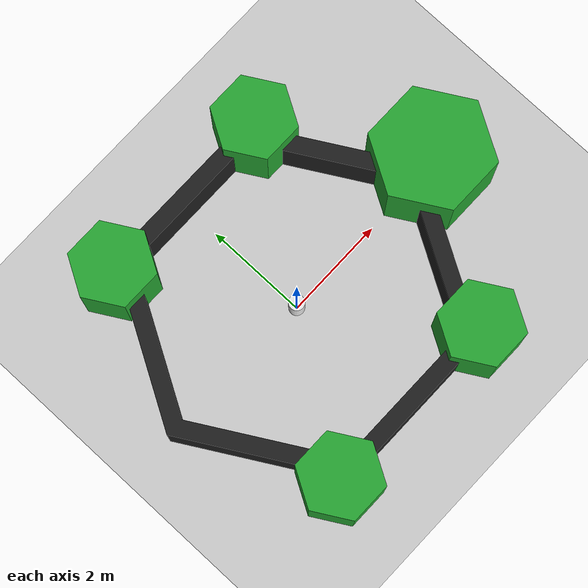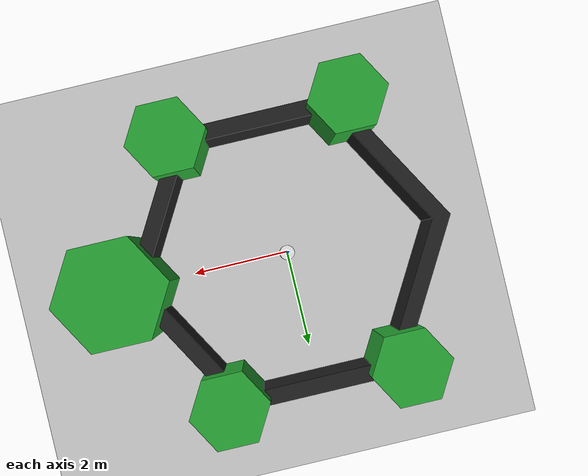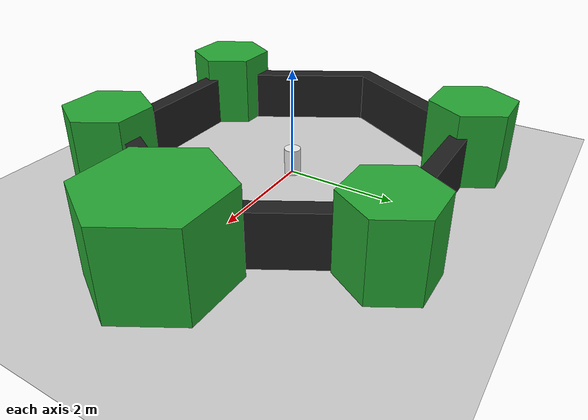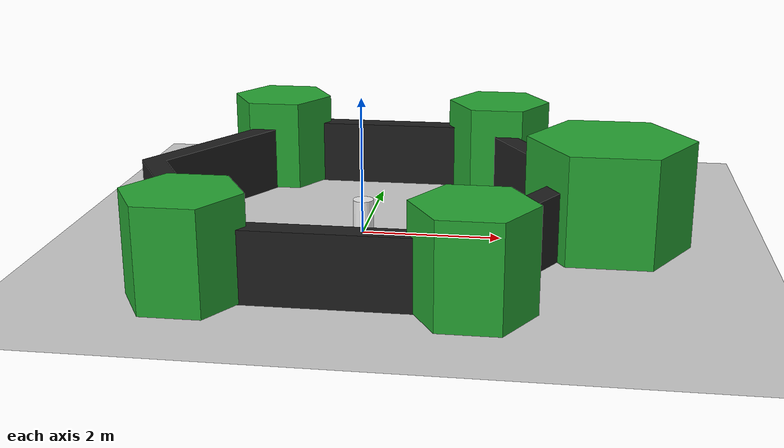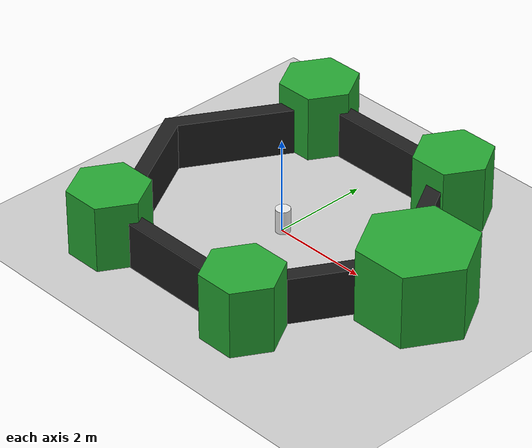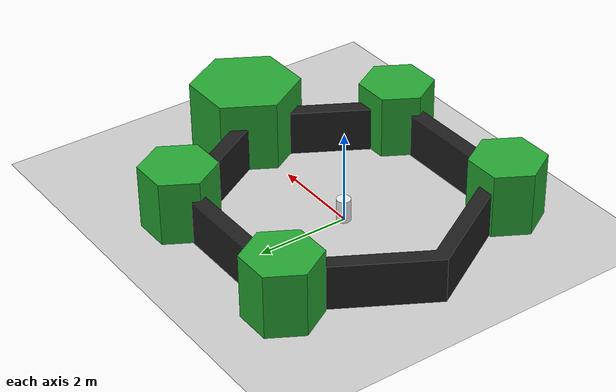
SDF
<sdf version="1.6">
 <world name="default">
  <model name="ground_plane">
   <static>1</static>
   <link name="link">
    <collision name="collision">
     <geometry><plane><normal>0 0 1</normal><size>100 100</size></plane></geometry>
     <surface>
      <contact><collide_bitmask>65535</collide_bitmask></contact>
      <friction><ode><mu>100</mu><mu2>50</mu2></ode></friction>
     </surface>
    </collision>
    <visual name="visual">
     <cast_shadows>0</cast_shadows>
     <geometry><plane><normal>0 0 1</normal><size>100 100</size></plane></geometry>
     <material>
      <script><uri>file://media/materials/scripts/gazebo.material</uri><name>Gazebo/Grey</name></script>
     </material>
    </visual>
   </link>
  </model>
  <model name="ros_symbol_only_middle_pillar">
   <link name="symbol">
    <inertial>
     <mass>1</mass>
     <inertia><ixx>1</ixx><ixy>0</ixy><ixz>0</ixz><iyy>1</iyy><iyz>0</iyz><izz>1</izz></inertia>
    </inertial>
    <visual name="two_two">
     <pose>0 0 0.25 0 -0 0</pose>
     <geometry><cylinder><radius>0.15</radius><length>0.5</length></cylinder></geometry>
     <material>
      <script><uri>file://media/materials/scripts/gazebo.material</uri><name>Gazebo/White</name></script>
      <shader type="vertex"><normal_map>__default__</normal_map></shader>
      <ambient>1 1 1 1</ambient>
      <diffuse>1 1 1 1</diffuse>
      <specular>0 0 0 1</specular>
      <emissive>0 0 0 1</emissive>
     </material>
    </visual>
    <visual name="head">
     <pose>3.5 0 -0.5 0 -0 0</pose>
     <geometry>
      <mesh><uri>model://turtlebot3_world/meshes/hexagon.dae</uri><scale>0.8 0.8 0.8</scale></mesh>
     </geometry>
     <material>
      <script><uri>file://media/materials/scripts/gazebo.material</uri><name>Gazebo/Green</name></script>
      <shader type="vertex"><normal_map>__default__</normal_map></shader>
      <ambient>0 1 0 1</ambient>
      <diffuse>0 1 0 1</diffuse>
      <specular>0.1 0.1 0.1 1</specular>
      <emissive>0 0 0 1</emissive>
     </material>
    </visual>
    <visual name="left_hand">
     <pose>1.8 2.7 0 0 -0 0</pose>
     <geometry>
      <mesh><uri>model://turtlebot3_world/meshes/hexagon.dae</uri><scale>0.55 0.55 0.55</scale></mesh>
     </geometry>
     <material>
      <script><uri>file://media/materials/scripts/gazebo.material</uri><name>Gazebo/Green</name></script>
      <shader type="vertex"><normal_map>__default__</normal_map></shader>
      <ambient>0 1 0 1</ambient>
      <diffuse>0 1 0 1</diffuse>
      <specular>0.1 0.1 0.1 1</specular>
      <emissive>0 0 0 1</emissive>
     </material>
    </visual>
    <visual name="right_hand">
     <pose>1.8 -2.7 0 0 -0 0</pose>
     <geometry>
      <mesh><uri>model://turtlebot3_world/meshes/hexagon.dae</uri><scale>0.55 0.55 0.55</scale></mesh>
     </geometry>
     <material>
      <script><uri>file://media/materials/scripts/gazebo.material</uri><name>Gazebo/Green</name></script>
      <shader type="vertex"><normal_map>__default__</normal_map></shader>
      <ambient>0 1 0 1</ambient>
      <diffuse>0 1 0 1</diffuse>
      <specular>0.1 0.1 0.1 1</specular>
      <emissive>0 0 0 1</emissive>
     </material>
     <cast_shadows>0</cast_shadows>
    </visual>
    <visual name="left_foot">
     <pose>-1.8 2.7 0 0 -0 0</pose>
     <geometry>
      <mesh><uri>model://turtlebot3_world/meshes/hexagon.dae</uri><scale>0.55 0.55 0.55</scale></mesh>
     </geometry>
     <material>
      <script><uri>file://media/materials/scripts/gazebo.material</uri><name>Gazebo/Green</name></script>
      <shader type="vertex"><normal_map>__default__</normal_map></shader>
      <ambient>0 1 0 1</ambient>
      <diffuse>0 1 0 1</diffuse>
      <specular>0.1 0.1 0.1 1</specular>
      <emissive>0 0 0 1</emissive>
     </material>
     <cast_shadows>0</cast_shadows>
    </visual>
    <visual name="right_foot">
     <pose>-1.8 -2.7 0 0 -0 0</pose>
     <geometry>
      <mesh><uri>model://turtlebot3_world/meshes/hexagon.dae</uri><scale>0.55 0.55 0.55</scale></mesh>
     </geometry>
     <material>
      <script><uri>file://media/materials/scripts/gazebo.material</uri><name>Gazebo/Green</name></script>
      <shader type="vertex"><normal_map>__default__</normal_map></shader>
      <ambient>0 1 0 1</ambient>
      <diffuse>0 1 0 1</diffuse>
      <specular>0.1 0.1 0.1 1</specular>
      <emissive>0 0 0 1</emissive>
     </material>
    </visual>
    <visual name="body">
     <pose>0 0 -0.3 0 0 -1.5708</pose>
     <geometry>
      <mesh><uri>model://turtlebot3_world/meshes/wall.dae</uri><scale>0.25 0.25 0.25</scale></mesh>
     </geometry>
     <material>
      <script><uri>file://media/materials/scripts/gazebo.material</uri><name>Gazebo/FlatBlack</name></script>
      <shader type="vertex"><normal_map>__default__</normal_map></shader>
      <ambient>0.1 0.1 0.1 1</ambient>
      <diffuse>0.1 0.1 0.1 1</diffuse>
      <specular>0.01 0.01 0.01 1</specular>
      <emissive>0 0 0 1</emissive>
     </material>
    </visual>
    <collision name="one_one">
     <pose>-1.1 -1.1 0.25 0 -0 0</pose>
     <geometry><cylinder><radius>0.15</radius><length>0.5</length></cylinder></geometry>
     <surface>
      <friction>
       <ode><mu>1</mu><mu2>1</mu2><fdir1>0 0 0</fdir1><slip1>0</slip1><slip2>0</slip2></ode>
       <torsional>
        <coefficient>1</coefficient>
        <patch_radius>0</patch_radius>
        <surface_radius>0</surface_radius>
        <use_patch_radius>1</use_patch_radius>
        <ode><slip>0</slip></ode>
       </torsional>
      </friction>
      <bounce><restitution_coefficient>0</restitution_coefficient><threshold>1e+06</threshold></bounce>
      <contact>
       <collide_without_contact>0</collide_without_contact>
       <collide_without_contact_bitmask>1</collide_without_contact_bitmask>
       <collide_bitmask>1</collide_bitmask>
       <ode>
        <soft_cfm>0</soft_cfm>
        <soft_erp>0.2</soft_erp>
        <kp>1e+13</kp>
        <kd>1</kd>
        <max_vel>0.01</max_vel>
        <min_depth>0</min_depth>
       </ode>
       <bullet>
        <split_impulse>1</split_impulse>
        <split_impulse_penetration_threshold>-0.01</split_impulse_penetration_threshold>
        <soft_cfm>0</soft_cfm>
        <soft_erp>0.2</soft_erp>
        <kp>1e+13</kp>
        <kd>1</kd>
       </bullet>
      </contact>
     </surface>
    </collision>
    <collision name="one_two">
     <pose>-1.1 0 0.25 0 -0 0</pose>
     <geometry><cylinder><radius>0.15</radius><length>0.5</length></cylinder></geometry>
     <surface>
      <friction>
       <ode><mu>1</mu><mu2>1</mu2><fdir1>0 0 0</fdir1><slip1>0</slip1><slip2>0</slip2></ode>
       <torsional>
        <coefficient>1</coefficient>
        <patch_radius>0</patch_radius>
        <surface_radius>0</surface_radius>
        <use_patch_radius>1</use_patch_radius>
        <ode><slip>0</slip></ode>
       </torsional>
      </friction>
      <bounce><restitution_coefficient>0</restitution_coefficient><threshold>1e+06</threshold></bounce>
      <contact>
       <collide_without_contact>0</collide_without_contact>
       <collide_without_contact_bitmask>1</collide_without_contact_bitmask>
       <collide_bitmask>1</collide_bitmask>
       <ode>
        <soft_cfm>0</soft_cfm>
        <soft_erp>0.2</soft_erp>
        <kp>1e+13</kp>
        <kd>1</kd>
        <max_vel>0.01</max_vel>
        <min_depth>0</min_depth>
       </ode>
       <bullet>
        <split_impulse>1</split_impulse>
        <split_impulse_penetration_threshold>-0.01</split_impulse_penetration_threshold>
        <soft_cfm>0</soft_cfm>
        <soft_erp>0.2</soft_erp>
        <kp>1e+13</kp>
        <kd>1</kd>
       </bullet>
      </contact>
     </surface>
    </collision>
    <collision name="one_three">
     <pose>-1.1 1.1 0.25 0 -0 0</pose>
     <geometry><cylinder><radius>0.15</radius><length>0.5</length></cylinder></geometry>
     <surface>
      <friction>
       <ode><mu>1</mu><mu2>1</mu2><fdir1>0 0 0</fdir1><slip1>0</slip1><slip2>0</slip2></ode>
       <torsional>
        <coefficient>1</coefficient>
        <patch_radius>0</patch_radius>
        <surface_radius>0</surface_radius>
        <use_patch_radius>1</use_patch_radius>
        <ode><slip>0</slip></ode>
       </torsional>
      </friction>
      <bounce><restitution_coefficient>0</restitution_coefficient><threshold>1e+06</threshold></bounce>
      <contact>
       <collide_without_contact>0</collide_without_contact>
       <collide_without_contact_bitmask>1</collide_without_contact_bitmask>
       <collide_bitmask>1</collide_bitmask>
       <ode>
        <soft_cfm>0</soft_cfm>
        <soft_erp>0.2</soft_erp>
        <kp>1e+13</kp>
        <kd>1</kd>
        <max_vel>0.01</max_vel>
        <min_depth>0</min_depth>
       </ode>
       <bullet>
        <split_impulse>1</split_impulse>
        <split_impulse_penetration_threshold>-0.01</split_impulse_penetration_threshold>
        <soft_cfm>0</soft_cfm>
        <soft_erp>0.2</soft_erp>
        <kp>1e+13</kp>
        <kd>1</kd>
       </bullet>
      </contact>
     </surface>
    </collision>
    <collision name="two_one">
     <pose>0 -1.1 0.25 0 -0 0</pose>
     <geometry><cylinder><radius>0.15</radius><length>0.5</length></cylinder></geometry>
     <surface>
      <friction>
       <ode><mu>1</mu><mu2>1</mu2><fdir1>0 0 0</fdir1><slip1>0</slip1><slip2>0</slip2></ode>
       <torsional>
        <coefficient>1</coefficient>
        <patch_radius>0</patch_radius>
        <surface_radius>0</surface_radius>
        <use_patch_radius>1</use_patch_radius>
        <ode><slip>0</slip></ode>
       </torsional>
      </friction>
      <bounce><restitution_coefficient>0</restitution_coefficient><threshold>1e+06</threshold></bounce>
      <contact>
       <collide_without_contact>0</collide_without_contact>
       <collide_without_contact_bitmask>1</collide_without_contact_bitmask>
       <collide_bitmask>1</collide_bitmask>
       <ode>
        <soft_cfm>0</soft_cfm>
        <soft_erp>0.2</soft_erp>
        <kp>1e+13</kp>
        <kd>1</kd>
        <max_vel>0.01</max_vel>
        <min_depth>0</min_depth>
       </ode>
       <bullet>
        <split_impulse>1</split_impulse>
        <split_impulse_penetration_threshold>-0.01</split_impulse_penetration_threshold>
        <soft_cfm>0</soft_cfm>
        <soft_erp>0.2</soft_erp>
        <kp>1e+13</kp>
        <kd>1</kd>
       </bullet>
      </contact>
     </surface>
    </collision>
    <collision name="two_three">
     <pose>0 1.1 0.25 0 -0 0</pose>
     <geometry><cylinder><radius>0.15</radius><length>0.5</length></cylinder></geometry>
     <surface>
      <friction>
       <ode><mu>1</mu><mu2>1</mu2><fdir1>0 0 0</fdir1><slip1>0</slip1><slip2>0</slip2></ode>
       <torsional>
        <coefficient>1</coefficient>
        <patch_radius>0</patch_radius>
        <surface_radius>0</surface_radius>
        <use_patch_radius>1</use_patch_radius>
        <ode><slip>0</slip></ode>
       </torsional>
      </friction>
      <bounce><restitution_coefficient>0</restitution_coefficient><threshold>1e+06</threshold></bounce>
      <contact>
       <collide_without_contact>0</collide_without_contact>
       <collide_without_contact_bitmask>1</collide_without_contact_bitmask>
       <collide_bitmask>1</collide_bitmask>
       <ode>
        <soft_cfm>0</soft_cfm>
        <soft_erp>0.2</soft_erp>
        <kp>1e+13</kp>
        <kd>1</kd>
        <max_vel>0.01</max_vel>
        <min_depth>0</min_depth>
       </ode>
       <bullet>
        <split_impulse>1</split_impulse>
        <split_impulse_penetration_threshold>-0.01</split_impulse_penetration_threshold>
        <soft_cfm>0</soft_cfm>
        <soft_erp>0.2</soft_erp>
        <kp>1e+13</kp>
        <kd>1</kd>
       </bullet>
      </contact>
     </surface>
    </collision>
    <collision name="two_two">
     <pose>0 0 0.25 0 -0 0</pose>
     <geometry><cylinder><radius>0.15</radius><length>0.5</length></cylinder></geometry>
     <surface>
      <friction>
       <ode><mu>1</mu><mu2>1</mu2><fdir1>0 0 0</fdir1><slip1>0</slip1><slip2>0</slip2></ode>
       <torsional>
        <coefficient>1</coefficient>
        <patch_radius>0</patch_radius>
        <surface_radius>0</surface_radius>
        <use_patch_radius>1</use_patch_radius>
        <ode><slip>0</slip></ode>
       </torsional>
      </friction>
      <bounce><restitution_coefficient>0</restitution_coefficient><threshold>1e+06</threshold></bounce>
      <contact>
       <collide_without_contact>0</collide_without_contact>
       <collide_without_contact_bitmask>1</collide_without_contact_bitmask>
       <collide_bitmask>1</collide_bitmask>
       <ode>
        <soft_cfm>0</soft_cfm>
        <soft_erp>0.2</soft_erp>
        <kp>1e+13</kp>
        <kd>1</kd>
        <max_vel>0.01</max_vel>
        <min_depth>0</min_depth>
       </ode>
       <bullet>
        <split_impulse>1</split_impulse>
        <split_impulse_penetration_threshold>-0.01</split_impulse_penetration_threshold>
        <soft_cfm>0</soft_cfm>
        <soft_erp>0.2</soft_erp>
        <kp>1e+13</kp>
        <kd>1</kd>
       </bullet>
      </contact>
     </surface>
    </collision>
    <collision name="three_one">
     <pose>1.1 -1.1 0.25 0 -0 0</pose>
     <geometry><cylinder><radius>0.15</radius><length>0.5</length></cylinder></geometry>
     <surface>
      <friction>
       <ode><mu>1</mu><mu2>1</mu2><fdir1>0 0 0</fdir1><slip1>0</slip1><slip2>0</slip2></ode>
       <torsional>
        <coefficient>1</coefficient>
        <patch_radius>0</patch_radius>
        <surface_radius>0</surface_radius>
        <use_patch_radius>1</use_patch_radius>
        <ode><slip>0</slip></ode>
       </torsional>
      </friction>
      <bounce><restitution_coefficient>0</restitution_coefficient><threshold>1e+06</threshold></bounce>
      <contact>
       <collide_without_contact>0</collide_without_contact>
       <collide_without_contact_bitmask>1</collide_without_contact_bitmask>
       <collide_bitmask>1</collide_bitmask>
       <ode>
        <soft_cfm>0</soft_cfm>
        <soft_erp>0.2</soft_erp>
        <kp>1e+13</kp>
        <kd>1</kd>
        <max_vel>0.01</max_vel>
        <min_depth>0</min_depth>
       </ode>
       <bullet>
        <split_impulse>1</split_impulse>
        <split_impulse_penetration_threshold>-0.01</split_impulse_penetration_threshold>
        <soft_cfm>0</soft_cfm>
        <soft_erp>0.2</soft_erp>
        <kp>1e+13</kp>
        <kd>1</kd>
       </bullet>
      </contact>
     </surface>
    </collision>
    <collision name="three_two">
     <pose>1.1 0 0.25 0 -0 0</pose>
     <geometry><cylinder><radius>0.15</radius><length>0.5</length></cylinder></geometry>
     <surface>
      <friction>
       <ode><mu>1</mu><mu2>1</mu2><fdir1>0 0 0</fdir1><slip1>0</slip1><slip2>0</slip2></ode>
       <torsional>
        <coefficient>1</coefficient>
        <patch_radius>0</patch_radius>
        <surface_radius>0</surface_radius>
        <use_patch_radius>1</use_patch_radius>
        <ode><slip>0</slip></ode>
       </torsional>
      </friction>
      <bounce><restitution_coefficient>0</restitution_coefficient><threshold>1e+06</threshold></bounce>
      <contact>
       <collide_without_contact>0</collide_without_contact>
       <collide_without_contact_bitmask>1</collide_without_contact_bitmask>
       <collide_bitmask>1</collide_bitmask>
       <ode>
        <soft_cfm>0</soft_cfm>
        <soft_erp>0.2</soft_erp>
        <kp>1e+13</kp>
        <kd>1</kd>
        <max_vel>0.01</max_vel>
        <min_depth>0</min_depth>
       </ode>
       <bullet>
        <split_impulse>1</split_impulse>
        <split_impulse_penetration_threshold>-0.01</split_impulse_penetration_threshold>
        <soft_cfm>0</soft_cfm>
        <soft_erp>0.2</soft_erp>
        <kp>1e+13</kp>
        <kd>1</kd>
       </bullet>
      </contact>
     </surface>
    </collision>
    <collision name="three_three">
     <pose>1.1 1.1 0.25 0 -0 0</pose>
     <geometry><cylinder><radius>0.15</radius><length>0.5</length></cylinder></geometry>
     <surface>
      <friction>
       <ode><mu>1</mu><mu2>1</mu2><fdir1>0 0 0</fdir1><slip1>0</slip1><slip2>0</slip2></ode>
       <torsional>
        <coefficient>1</coefficient>
        <patch_radius>0</patch_radius>
        <surface_radius>0</surface_radius>
        <use_patch_radius>1</use_patch_radius>
        <ode><slip>0</slip></ode>
       </torsional>
      </friction>
      <bounce><restitution_coefficient>0</restitution_coefficient><threshold>1e+06</threshold></bounce>
      <contact>
       <collide_without_contact>0</collide_without_contact>
       <collide_without_contact_bitmask>1</collide_without_contact_bitmask>
       <collide_bitmask>1</collide_bitmask>
       <ode>
        <soft_cfm>0</soft_cfm>
        <soft_erp>0.2</soft_erp>
        <kp>1e+13</kp>
        <kd>1</kd>
        <max_vel>0.01</max_vel>
        <min_depth>0</min_depth>
       </ode>
       <bullet>
        <split_impulse>1</split_impulse>
        <split_impulse_penetration_threshold>-0.01</split_impulse_penetration_threshold>
        <soft_cfm>0</soft_cfm>
        <soft_erp>0.2</soft_erp>
        <kp>1e+13</kp>
        <kd>1</kd>
       </bullet>
      </contact>
     </surface>
    </collision>
    <collision name="head">
     <pose>3.5 0 -0.5 0 -0 0</pose>
     <geometry>
      <mesh>
       <uri>/opt/ros/melodic/share/turtlebot3_gazebo/models/turtlebot3_world/meshes/hexagon.dae</uri>
       <scale>0.8 0.8 0.8</scale>
      </mesh>
     </geometry>
     <surface>
      <friction>
       <ode><mu>1</mu><mu2>1</mu2><fdir1>0 0 0</fdir1><slip1>0</slip1><slip2>0</slip2></ode>
       <torsional>
        <coefficient>1</coefficient>
        <patch_radius>0</patch_radius>
        <surface_radius>0</surface_radius>
        <use_patch_radius>1</use_patch_radius>
        <ode><slip>0</slip></ode>
       </torsional>
      </friction>
      <bounce><restitution_coefficient>0</restitution_coefficient><threshold>1e+06</threshold></bounce>
      <contact>
       <collide_without_contact>0</collide_without_contact>
       <collide_without_contact_bitmask>1</collide_without_contact_bitmask>
       <collide_bitmask>1</collide_bitmask>
       <ode>
        <soft_cfm>0</soft_cfm>
        <soft_erp>0.2</soft_erp>
        <kp>1e+13</kp>
        <kd>1</kd>
        <max_vel>0.01</max_vel>
        <min_depth>0</min_depth>
       </ode>
       <bullet>
        <split_impulse>1</split_impulse>
        <split_impulse_penetration_threshold>-0.01</split_impulse_penetration_threshold>
        <soft_cfm>0</soft_cfm>
        <soft_erp>0.2</soft_erp>
        <kp>1e+13</kp>
        <kd>1</kd>
       </bullet>
      </contact>
     </surface>
    </collision>
    <collision name="left_hand">
     <pose>1.8 2.7 0 0 -0 0</pose>
     <geometry>
      <mesh>
       <uri>/opt/ros/melodic/share/turtlebot3_gazebo/models/turtlebot3_world/meshes/hexagon.dae</uri>
       <scale>0.55 0.55 0.55</scale>
      </mesh>
     </geometry>
     <surface>
      <friction>
       <ode><mu>1</mu><mu2>1</mu2><fdir1>0 0 0</fdir1><slip1>0</slip1><slip2>0</slip2></ode>
       <torsional>
        <coefficient>1</coefficient>
        <patch_radius>0</patch_radius>
        <surface_radius>0</surface_radius>
        <use_patch_radius>1</use_patch_radius>
        <ode><slip>0</slip></ode>
       </torsional>
      </friction>
      <bounce><restitution_coefficient>0</restitution_coefficient><threshold>1e+06</threshold></bounce>
      <contact>
       <collide_without_contact>0</collide_without_contact>
       <collide_without_contact_bitmask>1</collide_without_contact_bitmask>
       <collide_bitmask>1</collide_bitmask>
       <ode>
        <soft_cfm>0</soft_cfm>
        <soft_erp>0.2</soft_erp>
        <kp>1e+13</kp>
        <kd>1</kd>
        <max_vel>0.01</max_vel>
        <min_depth>0</min_depth>
       </ode>
       <bullet>
        <split_impulse>1</split_impulse>
        <split_impulse_penetration_threshold>-0.01</split_impulse_penetration_threshold>
        <soft_cfm>0</soft_cfm>
        <soft_erp>0.2</soft_erp>
        <kp>1e+13</kp>
        <kd>1</kd>
       </bullet>
      </contact>
     </surface>
    </collision>
    <collision name="right_hand">
     <pose>1.8 -2.7 0 0 -0 0</pose>
     <geometry>
      <mesh>
       <uri>/opt/ros/melodic/share/turtlebot3_gazebo/models/turtlebot3_world/meshes/hexagon.dae</uri>
       <scale>0.55 0.55 0.55</scale>
      </mesh>
     </geometry>
     <surface>
      <friction>
       <ode><mu>1</mu><mu2>1</mu2><fdir1>0 0 0</fdir1><slip1>0</slip1><slip2>0</slip2></ode>
       <torsional>
        <coefficient>1</coefficient>
        <patch_radius>0</patch_radius>
        <surface_radius>0</surface_radius>
        <use_patch_radius>1</use_patch_radius>
        <ode><slip>0</slip></ode>
       </torsional>
      </friction>
      <bounce><restitution_coefficient>0</restitution_coefficient><threshold>1e+06</threshold></bounce>
      <contact>
       <collide_without_contact>0</collide_without_contact>
       <collide_without_contact_bitmask>1</collide_without_contact_bitmask>
       <collide_bitmask>1</collide_bitmask>
       <ode>
        <soft_cfm>0</soft_cfm>
        <soft_erp>0.2</soft_erp>
        <kp>1e+13</kp>
        <kd>1</kd>
        <max_vel>0.01</max_vel>
        <min_depth>0</min_depth>
       </ode>
       <bullet>
        <split_impulse>1</split_impulse>
        <split_impulse_penetration_threshold>-0.01</split_impulse_penetration_threshold>
        <soft_cfm>0</soft_cfm>
        <soft_erp>0.2</soft_erp>
        <kp>1e+13</kp>
        <kd>1</kd>
       </bullet>
      </contact>
     </surface>
    </collision>
    <collision name="left_foot">
     <pose>-1.8 2.7 0 0 -0 0</pose>
     <geometry>
      <mesh>
       <uri>/opt/ros/melodic/share/turtlebot3_gazebo/models/turtlebot3_world/meshes/hexagon.dae</uri>
       <scale>0.55 0.55 0.55</scale>
      </mesh>
     </geometry>
     <surface>
      <friction>
       <ode><mu>1</mu><mu2>1</mu2><fdir1>0 0 0</fdir1><slip1>0</slip1><slip2>0</slip2></ode>
       <torsional>
        <coefficient>1</coefficient>
        <patch_radius>0</patch_radius>
        <surface_radius>0</surface_radius>
        <use_patch_radius>1</use_patch_radius>
        <ode><slip>0</slip></ode>
       </torsional>
      </friction>
      <bounce><restitution_coefficient>0</restitution_coefficient><threshold>1e+06</threshold></bounce>
      <contact>
       <collide_without_contact>0</collide_without_contact>
       <collide_without_contact_bitmask>1</collide_without_contact_bitmask>
       <collide_bitmask>1</collide_bitmask>
       <ode>
        <soft_cfm>0</soft_cfm>
        <soft_erp>0.2</soft_erp>
        <kp>1e+13</kp>
        <kd>1</kd>
        <max_vel>0.01</max_vel>
        <min_depth>0</min_depth>
       </ode>
       <bullet>
        <split_impulse>1</split_impulse>
        <split_impulse_penetration_threshold>-0.01</split_impulse_penetration_threshold>
        <soft_cfm>0</soft_cfm>
        <soft_erp>0.2</soft_erp>
        <kp>1e+13</kp>
        <kd>1</kd>
       </bullet>
      </contact>
     </surface>
    </collision>
    <collision name="right_foot">
     <pose>-1.8 -2.7 0 0 -0 0</pose>
     <geometry>
      <mesh>
       <uri>/opt/ros/melodic/share/turtlebot3_gazebo/models/turtlebot3_world/meshes/hexagon.dae</uri>
       <scale>0.55 0.55 0.55</scale>
      </mesh>
     </geometry>
     <surface>
      <friction>
       <ode><mu>1</mu><mu2>1</mu2><fdir1>0 0 0</fdir1><slip1>0</slip1><slip2>0</slip2></ode>
       <torsional>
        <coefficient>1</coefficient>
        <patch_radius>0</patch_radius>
        <surface_radius>0</surface_radius>
        <use_patch_radius>1</use_patch_radius>
        <ode><slip>0</slip></ode>
       </torsional>
      </friction>
      <bounce><restitution_coefficient>0</restitution_coefficient><threshold>1e+06</threshold></bounce>
      <contact>
       <collide_without_contact>0</collide_without_contact>
       <collide_without_contact_bitmask>1</collide_without_contact_bitmask>
       <collide_bitmask>1</collide_bitmask>
       <ode>
        <soft_cfm>0</soft_cfm>
        <soft_erp>0.2</soft_erp>
        <kp>1e+13</kp>
        <kd>1</kd>
        <max_vel>0.01</max_vel>
        <min_depth>0</min_depth>
       </ode>
       <bullet>
        <split_impulse>1</split_impulse>
        <split_impulse_penetration_threshold>-0.01</split_impulse_penetration_threshold>
        <soft_cfm>0</soft_cfm>
        <soft_erp>0.2</soft_erp>
        <kp>1e+13</kp>
        <kd>1</kd>
       </bullet>
      </contact>
     </surface>
    </collision>
    <collision name="body">
     <pose>0 0 -0.3 0 0 -1.5708</pose>
     <geometry>
      <mesh>
       <uri>/opt/ros/melodic/share/turtlebot3_gazebo/models/turtlebot3_world/meshes/wall.dae</uri>
       <scale>0.25 0.25 0.25</scale>
      </mesh>
     </geometry>
     <surface>
      <friction>
       <ode><mu>1</mu><mu2>1</mu2><fdir1>0 0 0</fdir1><slip1>0</slip1><slip2>0</slip2></ode>
       <torsional>
        <coefficient>1</coefficient>
        <patch_radius>0</patch_radius>
        <surface_radius>0</surface_radius>
        <use_patch_radius>1</use_patch_radius>
        <ode><slip>0</slip></ode>
       </torsional>
      </friction>
      <bounce><restitution_coefficient>0</restitution_coefficient><threshold>1e+06</threshold></bounce>
      <contact>
       <collide_without_contact>0</collide_without_contact>
       <collide_without_contact_bitmask>1</collide_without_contact_bitmask>
       <collide_bitmask>1</collide_bitmask>
       <ode>
        <soft_cfm>0</soft_cfm>
        <soft_erp>0.2</soft_erp>
        <kp>1e+13</kp>
        <kd>1</kd>
        <max_vel>0.01</max_vel>
        <min_depth>0</min_depth>
       </ode>
       <bullet>
        <split_impulse>1</split_impulse>
        <split_impulse_penetration_threshold>-0.01</split_impulse_penetration_threshold>
        <soft_cfm>0</soft_cfm>
        <soft_erp>0.2</soft_erp>
        <kp>1e+13</kp>
        <kd>1</kd>
       </bullet>
      </contact>
     </surface>
    </collision>
   </link>
   <static>1</static>
   <pose>0.011743 0.00991 0 0 -0 0</pose>
  </model>
 </world>
</sdf>
